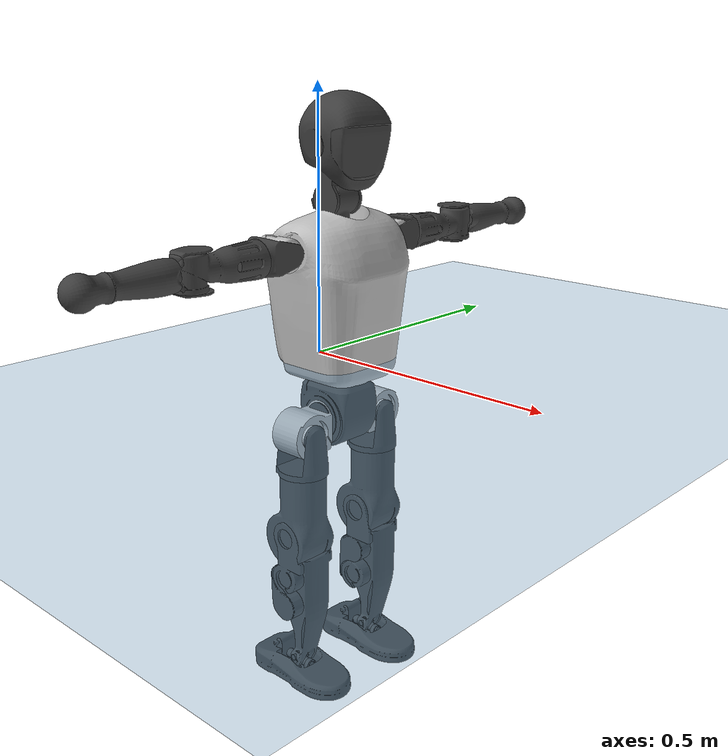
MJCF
<mujoco model="T1">
  <compiler angle="radian" assetdir="assets" balanceinertia="true" inertiafromgeom="false"/>

  <option timestep="0.005" density="1.2" viscosity="2e-05"/>

  <size nkey="1"/>

  <visual>
    <quality shadowsize="8192"/>
    <map shadowclip="0.5"/>
  </visual>

  <default>
    <default class="/">
      <joint armature="0.01" damping="0.01" frictionloss="0.1"/>
      <geom contype="0" conaffinity="0" group="1" solref="-1000 -80"/>
      <site size="0.01 0.005 0.005" group="5"/>
      <general forcelimited="true" biastype="affine" gainprm="25" biasprm="0 -25 -0.6"/>
      <default class="t1">
        <geom rgba="0.25 0.25 0.25 1"/>
        <default class="visual">
          <geom type="mesh" group="2"/>
        </default>
        <default class="collision">
          <geom group="3"/>
        </default>
        <default class="foot">
          <geom size="0.1115 0.05 0.015" type="box" condim="6" group="4" priority="1" solimp="0.015 1 0.015"/>
        </default>
        <default class="reward_collision_sphere">
          <geom group="5" rgba="1 0 0 1"/>
        </default>
      </default>
    </default>
  </default>

  <asset>
    <texture type="skybox" colorspace="auto" name="//unnamed_texture_0" builtin="gradient" rgb1="0.95 0.95 0.95" rgb2="0.95 0.95 0.95" width="100" height="600"/>
    <texture type="2d" colorspace="auto" name="texplane" builtin="checker" rgb1="0.345 0.575 0.748" rgb2="0.345 0.575 0.748" markrgb="1 1 1" width="512" height="512"/>
    <material name="MatPlane" class="/" texture="texplane" texuniform="true" texrepeat="2 2" specular="0.9"/>
    <mesh name="Trunk" class="/" file="Trunk.stl"/>
    <mesh name="H1" class="/" file="H1.stl"/>
    <mesh name="H2" class="/" file="H2.stl"/>
    <mesh name="AL1" class="/" file="AL1.stl"/>
    <mesh name="AL2" class="/" file="AL2.stl"/>
    <mesh name="AL3" class="/" file="AL3.stl"/>
    <mesh name="left_hand_link" class="/" file="left_hand_link.stl"/>
    <mesh name="AR1" class="/" file="AR1.stl"/>
    <mesh name="AR2" class="/" file="AR2.stl"/>
    <mesh name="AR3" class="/" file="AR3.stl"/>
    <mesh name="right_hand_link" class="/" file="right_hand_link.stl"/>
    <mesh name="Waist" class="/" file="Waist.stl"/>
    <mesh name="Hip_Pitch_Left" class="/" file="Hip_Pitch_Left.stl"/>
    <mesh name="Hip_Roll_Left" class="/" file="Hip_Roll_Left.stl"/>
    <mesh name="Hip_Yaw_Left" class="/" file="Hip_Yaw_Left.stl"/>
    <mesh name="Shank_Left" class="/" file="Shank_Left.stl"/>
    <mesh name="Ankle_Cross_Left" class="/" file="Ankle_Cross_Left.stl"/>
    <mesh name="left_foot_link" class="/" file="left_foot_link.stl"/>
    <mesh name="Hip_Pitch_Right" class="/" file="Hip_Pitch_Right.stl"/>
    <mesh name="Hip_Roll_Right" class="/" file="Hip_Roll_Right.stl"/>
    <mesh name="Hip_Yaw_Right" class="/" file="Hip_Yaw_Right.stl"/>
    <mesh name="Shank_Right" class="/" file="Shank_Right.stl"/>
    <mesh name="Ankle_Cross_Right" class="/" file="Ankle_Cross_Right.stl"/>
    <mesh name="right_foot_link" class="/" file="right_foot_link.stl"/>
  </asset>

  <worldbody>
    <geom name="floor" class="/" size="100 100 0.125" type="plane" group="0" material="MatPlane"/>
    <light name="toplight_shadow" class="/" pos="0 0 5" dir="0.0990148 0.0990148 -0.990148" type="directional" ambient="0.04 0.04 0.04" diffuse="0.55 0.55 0.55" specular="0.12 0.12 0.12"/>
    <light name="toplight_fill" class="/" pos="0 0 5" dir="0.0990148 0.0990148 -0.990148" type="directional" castshadow="false" ambient="0.04 0.04 0.04" diffuse="0.3 0.3 0.3" specular="0.08 0.08 0.08"/>
    <body name="trunk" childclass="t1" pos="2.22364e-05 0.00100594 0.00229954" quat="1 3.80013e-05 0.000110668 -4.72021e-05">
      <inertial pos="0.0395823 -0.0029382 0.10204" quat="0.99995 -3.82523e-05 -0.00994668 -0.000352194" mass="7.84205" diaginertia="0.024346 0.0485056 0.0464435"/>
      <joint name="//unnamed_joint_0" type="free" armature="0" damping="0" frictionloss="0"/>
      <geom name="//unnamed_geom_1" class="visual" rgba="0.76 0.76 0.76 1" mesh="Trunk"/>
      <geom name="//unnamed_geom_2" class="collision" size="0.0660738 0.0880984 0.132148" pos="0.0458195 0 0.11613" type="box"/>
      <geom name="//unnamed_geom_3" class="reward_collision_sphere" size="0.101313" pos="0.0458195 0 0.0967748"/>
      <geom name="//unnamed_geom_4" class="reward_collision_sphere" size="0.0132148" pos="0.0458195 0.0774814 0"/>
      <geom name="//unnamed_geom_5" class="reward_collision_sphere" size="0.0132148" pos="0.0458195 -0.0774814 0"/>
      <geom name="//unnamed_geom_6" class="reward_collision_sphere" size="0.0132148" pos="0.0458195 0.0975354 0.174195"/>
      <geom name="//unnamed_geom_7" class="reward_collision_sphere" size="0.0132148" pos="0.0458195 -0.0975354 0.174195"/>
      <site name="imu" pos="-0.0132979 0.0129304 -0.0134812" size="0.00880984"/>
      <camera name="track" pos="0 -1.82309 0" quat="0.707107 0.707107 0 0" mode="trackcom"/>
      <camera name="ego_camera" pos="0.0931664 0 0.406454" quat="-0.5 -0.5 0.5 0.5"/>
      <body name="H1" pos="0.0468768 0.000663673 0.234887" quat="0.999999 0.00123355 5.74563e-05 0.000675984">
        <inertial pos="-0.00114314 -0.00191992 0.0555339" quat="0.766574 -0.0101724 0.000451722 0.642075" mass="0.323672" diaginertia="6.27643e-05 0.000144979 0.000132075"/>
        <joint name="AAHead_yaw" pos="0 0 0" axis="-0.00128085 -0.00885181 0.99996" range="-1.59303 1.5592" armature="0.0101146" damping="0" frictionloss="0.0898864"/>
        <geom name="//unnamed_geom_8" class="visual" mesh="H1"/>
        <body name="H2" pos="0.00186996 -0.0022515 0.0596834" quat="1 -0.000100035 0.000129009 -0.000636029">
          <inertial pos="0.00467657 -9.31012e-06 0.0955275" quat="0.988462 0.104689 -0.0790476 -0.0757328" mass="0.435099" diaginertia="0.000531551 0.00120806 0.001493"/>
          <joint name="Head_pitch" pos="0 0 0" axis="-0.00332519 -0.99992 0.0122394" stiffness="0.00645167" range="-1.2001 0.312508" armature="0.00902836" damping="0" frictionloss="0.0922054"/>
          <geom name="//unnamed_geom_9" class="visual" mesh="H2"/>
          <geom name="//unnamed_geom_10" class="collision" size="0.0704787" pos="0.00763659 0 0.106452"/>
          <geom name="//unnamed_geom_11" class="reward_collision_sphere" size="0.0792886" pos="0.0152732 0 0.0967748"/>
        </body>
      </body>
      <body name="AL1" pos="0.0437291 0.0986401 0.211978" quat="0.999999 -0.000681187 0.000241934 -0.00119854">
        <inertial pos="-0.000390294 0.043585 0.000233656" quat="0.505354 0.492784 -0.502214 0.499562" mass="0.360899" diaginertia="0.000363457 0.000810396 0.00024693"/>
        <joint name="Left_Shoulder_Pitch" pos="0 0 0" axis="0.00354664 0.999991 -0.00233211" range="-3.29201 1.23339" armature="0.00894574" damping="0.00891635" frictionloss="0.0787735"/>
        <geom name="//unnamed_geom_12" class="visual" rgba="0.76 0.76 0.76 1" mesh="AL1"/>
        <body name="AL2" pos="-0.00105061 0.0447063 0.000145826" quat="1 3.03125e-05 8.66997e-06 1.08944e-05">
          <inertial pos="0.00194962 0.0353236 0.00251627" quat="0.488138 0.512098 -0.487787 0.511411" mass="0.116501" diaginertia="0.000107243 0.000215948 0.000157105"/>
          <joint name="Left_Shoulder_Roll" pos="0 0 0" axis="-0.999989 0.000560183 0.00468788" stiffness="0.00583985" range="-1.51728 1.79453" armature="0.00775506" damping="0" frictionloss="0.0888888"/>
          <geom name="//unnamed_geom_13" class="visual" mesh="AL2"/>
          <body name="AL3" pos="0.00330515 0.0564566 -0.00171023" quat="1 -0.000528974 -0.000332663 -0.000301171">
            <inertial pos="0.00197972 0.0775933 -0.000274494" quat="0.704375 0.709805 -0.00568056 7.21359e-05" mass="0.706936" diaginertia="0.00324245 0.00828215 0.000511112"/>
            <joint name="Left_Elbow_Pitch" pos="0 0 0" axis="0.0003771 -0.999928 0.0119907" range="-2.21989 2.3241" armature="0.00778932" damping="0.00841769" frictionloss="0.0771997"/>
            <geom name="//unnamed_geom_14" class="visual" mesh="AL3"/>
            <geom name="//unnamed_geom_15" class="collision" size="0.0264295 0.0660738" pos="0 0.0455773 0" quat="0.707105 0.707108 0 0" type="cylinder"/>
            <geom name="//unnamed_geom_16" class="reward_collision_sphere" size="0.0317154"/>
            <body name="left_hand_link" pos="-0.00195067 0.137019 0.00284608" quat="1 0.000308816 -0.000195623 0.00031054">
              <inertial pos="3.56351e-05 0.0988894 0.00183073" quat="0.707958 0.706255 -5.97719e-05 -0.0002172" mass="0.223508" diaginertia="0.00219623 0.00527011 0.000182984"/>
              <joint name="Left_Elbow_Yaw" pos="0 0 0" axis="0.00244957 -0.0055952 0.999981" range="-2.46435 -0.0014862" armature="0.0101147" damping="0.0109124" frictionloss="0.0799923"/>
              <geom name="//unnamed_geom_17" class="visual" mesh="left_hand_link"/>
              <geom name="//unnamed_geom_18" class="collision" size="0.0264295 0.0770861" pos="0 0.118501 0" quat="0.707105 0.707108 0 0" type="cylinder"/>
              <geom name="//unnamed_geom_19" class="reward_collision_sphere" size="0.0440492"/>
              <geom name="//unnamed_geom_20" class="reward_collision_sphere" size="0.0308344" pos="0 0.10027 0"/>
              <geom name="//unnamed_geom_21" class="reward_collision_sphere" size="0.0308344" pos="0 0.195982 0"/>
            </body>
          </body>
        </body>
      </body>
      <body name="AR1" pos="0.0408482 -0.0935675 0.212325" quat="1 0.000265486 0.000280133 -0.000508372">
        <inertial pos="-0.00349948 -0.0411437 0.00234234" quat="0.505712 0.504919 -0.49858 0.490643" mass="0.370217" diaginertia="0.000350528 0.000802912 0.000257608"/>
        <joint name="Right_Shoulder_Pitch" pos="0 0 0" axis="0.000302866 -1 -0.00026056" stiffness="0.00533587" range="-1.23036 3.30195" armature="0.00896129" damping="0.0103783" frictionloss="0.0772894"/>
        <geom name="//unnamed_geom_22" class="visual" rgba="0.76 0.76 0.76 1" mesh="AR1"/>
        <body name="AR2" pos="0.000135858 -0.0414674 0.00043897" quat="1 0.000175077 0.000145318 0.000145268">
          <inertial pos="0.00279685 -0.0355993 0.00203758" quat="0.512471 0.487251 -0.511657 0.488024" mass="0.109742" diaginertia="0.000103486 0.000224582 0.000152941"/>
          <joint name="Right_Shoulder_Roll" pos="0 0 0" axis="-0.999892 -0.00199524 -0.0145369" range="-1.70709 1.62288" armature="0.00777233" damping="0.0170746" frictionloss="0.0833873"/>
          <geom name="//unnamed_geom_23" class="visual" mesh="AR2"/>
          <body name="AR3" pos="0.000571437 -0.0542048 -0.00233356" quat="1 0.000123565 -9.95126e-05 -0.000106798">
            <inertial pos="-0.000153413 -0.0805902 0.00278752" quat="0.716367 0.697716 -0.0026898 0.00211851" mass="0.69074" diaginertia="0.00339727 0.00780203 0.000544917"/>
            <joint name="Right_Elbow_Pitch" pos="0 0 0" axis="0.00131475 0.999982 -0.00585425" range="-2.23121 2.21878" armature="0.00891362" damping="0.0211549" frictionloss="0.088897"/>
            <geom name="//unnamed_geom_24" class="visual" mesh="AR3"/>
            <geom name="//unnamed_geom_25" class="collision" size="0.0264295 0.0660738" pos="0 -0.0455773 0" quat="0.707105 0.707108 0 0" type="cylinder"/>
            <geom name="//unnamed_geom_26" class="reward_collision_sphere" size="0.0317154"/>
            <body name="right_hand_link" pos="0.000568879 -0.134189 -0.000124848" quat="1 0.000252679 0.000503504 -9.7714e-06">
              <inertial pos="-7.5893e-05 -0.0986989 -0.00180347" quat="0.704843 0.709359 0.0020053 0.00175504" mass="0.221954" diaginertia="0.00208463 0.00508533 0.000175732"/>
              <joint name="Right_Elbow_Yaw" pos="0 0 0" axis="0.000732318 -0.00160068 0.999998" stiffness="0.00222841" range="-0.0213393 2.44903" armature="0.00829869" damping="0.00207026" frictionloss="0.0983025"/>
              <geom name="//unnamed_geom_27" class="visual" mesh="right_hand_link"/>
              <geom name="//unnamed_geom_28" class="collision" size="0.0264295 0.0770861" pos="0 -0.118501 0" quat="0.707105 0.707108 0 0" type="cylinder"/>
              <geom name="//unnamed_geom_29" class="reward_collision_sphere" size="0.0440492"/>
              <geom name="//unnamed_geom_30" class="reward_collision_sphere" size="0.0308344" pos="0 -0.10027 0"/>
              <geom name="//unnamed_geom_31" class="reward_collision_sphere" size="0.0308344" pos="0 -0.195982 0"/>
            </body>
          </body>
        </body>
      </body>
      <body name="Waist" pos="0.0496523 -0.000877794 -0.110966" quat="1 -0.00019894 5.15097e-05 -9.89485e-07">
        <inertial pos="-0.000814405 0.00162304 0.00694127" quat="0.984201 0.00216308 -0.177012 0.00332059" mass="1.77333" diaginertia="0.00135066 0.00336351 0.00409005"/>
        <joint name="Waist" pos="0 0 0" axis="0.011024 -0.00175206 0.999938" stiffness="0.00633693" range="-1.57286 1.5719" armature="0.00827192" damping="0.024953" frictionloss="0.0858961"/>
        <geom name="//unnamed_geom_32" class="visual" mesh="Waist"/>
        <body name="Hip_Pitch_Left" pos="-0.00165622 0.0984957 0.00206248" quat="0.999999 0.000497361 -0.000978671 -0.000713935">
          <inertial pos="-0.00201828 -0.00429606 -0.0177961" quat="0.975072 0.221441 0.0141016 0.000446485" mass="0.685498" diaginertia="0.000454368 0.000897011 0.00106351"/>
          <joint name="Left_Hip_Pitch" pos="0 0 0" axis="0.00234415 0.999996 -0.00149752" range="-1.78794 1.57834" armature="0.00752997" damping="0.0134001" frictionloss="0.0993683"/>
          <geom name="//unnamed_geom_33" class="visual" rgba="0.76 0.76 0.76 1" mesh="Hip_Pitch_Left"/>
          <body name="Hip_Roll_Left" pos="0.00327661 -0.00167448 -0.0219982" quat="1 -0.000488779 0.000438275 0.000291224">
            <inertial pos="0.00307595 -0.00118327 -0.0545932" quat="0.70464 -0.00573914 -0.00478754 0.709525" mass="0.254428" diaginertia="0.000455654 0.00094365 0.000431038"/>
            <joint name="Left_Hip_Roll" pos="0 0 0" axis="-0.999999 0.000411155 -0.0014208" range="-1.56957 0.210987" armature="0.00976853" damping="0.0219506" frictionloss="0.0886274"/>
            <geom name="//unnamed_geom_34" class="visual" mesh="Hip_Roll_Left"/>
            <geom name="//unnamed_geom_35" class="reward_collision_sphere" size="0.0484541"/>
            <body name="Hip_Yaw_Left" pos="0.000139019 0.00107376 -0.0780951" quat="1 -0.000139483 -8.92105e-05 -0.000183516">
              <inertial pos="-0.00509343 0.00175948 -0.0836962" quat="0.696043 -0.0360023 -0.0315988 0.7164" mass="1.51523" diaginertia="0.00684451 0.0163077 0.00222788"/>
              <joint name="Left_Hip_Yaw" pos="0 0 0" axis="-0.00171056 -0.0030389 -0.999994" stiffness="0.00175737" range="-1.00138 0.998171" armature="0.0087804" damping="0.00318883" frictionloss="0.0980469"/>
              <geom name="//unnamed_geom_36" class="visual" mesh="Hip_Yaw_Left"/>
              <geom name="//unnamed_geom_37" class="collision" size="0.0440492 0.0704787" type="cylinder"/>
              <body name="Shank_Left" pos="-0.00884765 -0.00191828 -0.132214" quat="0.999999 0.00100012 -0.000799323 -0.000542631">
                <inertial pos="-0.00421807 -0.00147471 -0.119789" quat="0.997767 0.012857 -0.016409 0.063452" mass="1.21162" diaginertia="0.00914924 0.0224277 0.00159769"/>
                <joint name="Left_Knee_Pitch" pos="0 0 0" axis="0.00996621 0.999935 0.00562404" range="-0.0131786 2.28487" armature="0.0100397" damping="0" frictionloss="0.0875791"/>
                <geom name="//unnamed_geom_38" class="visual" mesh="Shank_Left"/>
                <geom name="//unnamed_geom_39" class="collision" size="0.0440492 0.0660738" pos="0 0 -0.11613" type="cylinder"/>
                <geom name="//unnamed_geom_40" class="reward_collision_sphere" size="0.057264"/>
                <body name="Ankle_Cross_Left" pos="0.00159655 -0.00297015 -0.27023" quat="1 0.000407235 -0.000270267 0.000360158">
                  <inertial pos="-0.00185249 3.94461e-05 -0.00792616" quat="0.451317 0.555815 0.544537 0.436878" mass="0.0482381" diaginertia="7.71523e-06 1.60074e-05 9.51553e-06"/>
                  <joint name="Left_Ankle_Pitch" pos="0 0 0" axis="0.000542554 0.999999 0.00123873" stiffness="0.00860426" range="-0.92047 0.402379" armature="0.00973162" damping="0.000655722" frictionloss="0.0967555"/>
                  <geom name="//unnamed_geom_41" class="visual" mesh="Ankle_Cross_Left"/>
                  <body name="left_foot_link" pos="-0.00243073 -0.00132115 -0.0145322" quat="0.999999 -0.000107891 0.000939548 0.000922202">
                    <inertial pos="0.000401805 -0.000734821 -0.00935575" quat="-0.0132303 0.621703 0.00200013 0.783139" mass="0.481268" diaginertia="0.000710071 0.00154676 0.00195981"/>
                    <joint name="Left_Ankle_Roll" pos="0 0 0" axis="-0.999937 0.0109917 0.00236969" stiffness="0.00855757" range="-0.431821 0.49069" armature="0.00891786" damping="0.0100518" frictionloss="0.0972571"/>
                    <geom name="//unnamed_geom_42" class="visual" mesh="left_foot_link"/>
                    <geom name="left_foot" class="foot" size="0.102759 0.0406121 0.0142163" pos="0.00763659 0 -0.0145162"/>
                    <geom name="//unnamed_geom_44" class="reward_collision_sphere" size="0.0458112" pos="0.00763659 0 -0.0145162"/>
                    <geom name="//unnamed_geom_45" class="reward_collision_sphere" size="0.0264295" pos="0.0725476 -0.0209656 -0.0145162"/>
                    <geom name="//unnamed_geom_46" class="reward_collision_sphere" size="0.0264295" pos="-0.0534561 -0.0209656 -0.0145162"/>
                    <site name="left_foot" class="foot" pos="0.00763659 0 -0.0145162" size="0.00880984"/>
                  </body>
                </body>
              </body>
            </body>
          </body>
        </body>
        <body name="Hip_Pitch_Right" pos="-0.000948081 -0.0965138 -0.000152229" quat="1 -0.000487416 -0.000216428 -6.32867e-05">
          <inertial pos="-5.59648e-05 0.00721729 -0.018435" quat="0.974001 -0.225638 0.0188586 0.00732399" mass="0.672337" diaginertia="0.000455047 0.000909773 0.00102725"/>
          <joint name="Right_Hip_Pitch" pos="0 0 0" axis="-0.00118493 -0.999997 0.00231918" range="-1.57293 1.76233" armature="0.00902427" damping="0.00916918" frictionloss="0.0897273"/>
          <geom name="//unnamed_geom_47" class="visual" rgba="0.76 0.76 0.76 1" mesh="Hip_Pitch_Right"/>
          <body name="Hip_Roll_Right" pos="0.00205223 0.000396628 -0.0217502" quat="1 2.09324e-05 2.05819e-05 2.62625e-05">
            <inertial pos="0.00168381 0.00164279 -0.0519178" quat="0.711597 0.00519974 -0.00751795 0.702529" mass="0.251784" diaginertia="0.00044934 0.000944852 0.000417424"/>
            <joint name="Right_Hip_Roll" pos="0 0 0" axis="-0.999987 0.00462925 -0.00222998" stiffness="0.0059702" range="-0.178119 1.57468" armature="0.00794028" damping="0.0081708" frictionloss="0.0888898"/>
            <geom name="//unnamed_geom_48" class="visual" mesh="Hip_Roll_Right"/>
            <geom name="//unnamed_geom_49" class="reward_collision_sphere" size="0.0484541"/>
            <body name="Hip_Yaw_Right" pos="-0.00266459 0.00166795 -0.0790504" quat="1 0.000283862 0.000362827 0.000240099">
              <inertial pos="-0.00798984 -0.000592665 -0.0888281" quat="0.707623 -0.0272488 -0.0255328 0.705603" mass="1.5159" diaginertia="0.00663409 0.0155648 0.0021493"/>
              <joint name="Right_Hip_Yaw" pos="0 0 0" axis="-0.00153177 -0.000139445 -0.999999" range="-0.949064 0.964033" armature="0.00854074" damping="0.00482741" frictionloss="0.0878354"/>
              <geom name="//unnamed_geom_50" class="visual" mesh="Hip_Yaw_Right"/>
              <geom name="//unnamed_geom_51" class="collision" size="0.0440492 0.0704787" type="cylinder"/>
              <body name="Shank_Right" pos="-0.00995755 0.00185444 -0.127021" quat="1 0.00010659 0.000168402 -0.000205478">
                <inertial pos="-0.00229 -0.00100765 -0.119701" quat="0.999618 0.00274757 -0.0111393 -0.0251505" mass="1.14539" diaginertia="0.00881976 0.0219792 0.00161429"/>
                <joint name="Right_Knee_Pitch" pos="0 0 0" axis="-0.00115652 -0.99999 0.00425478" range="-2.34926 -0.0212992" armature="0.00969103" damping="0" frictionloss="0.0999312"/>
                <geom name="//unnamed_geom_52" class="visual" mesh="Shank_Right"/>
                <geom name="//unnamed_geom_53" class="collision" size="0.0440492 0.0660738" pos="0 0 -0.11613" type="cylinder"/>
                <geom name="//unnamed_geom_54" class="reward_collision_sphere" size="0.057264"/>
                <body name="Ankle_Cross_Right" pos="-0.00106272 -0.00316948 -0.270256" quat="0.999999 -0.000729597 4.80037e-05 -0.00114443">
                  <inertial pos="-0.00185245 -0.000381815 -0.00669775" quat="0.443258 0.549036 0.552398 0.443777" mass="0.0498218" diaginertia="7.22527e-06 1.6085e-05 9.54437e-06"/>
                  <joint name="Right_Ankle_Pitch" pos="0 0 0" axis="0.000384965 -0.999999 0.00149124" range="-0.377078 0.919999" armature="0.00894933" damping="0.0207865" frictionloss="0.0882121"/>
                  <geom name="//unnamed_geom_55" class="visual" mesh="Ankle_Cross_Right"/>
                  <body name="right_foot_link" pos="8.27907e-05 -0.00107278 -0.0133003" quat="0.999999 0.00130919 -0.00029465 -0.00022311">
                    <inertial pos="-0.00273752 0.000784854 -0.00880047" quat="0.000336326 0.621429 0.000327962 0.78347" mass="0.468156" diaginertia="0.000677786 0.0014574 0.00185296"/>
                    <joint name="Right_Ankle_Roll" pos="0 0 0" axis="-1 9.14957e-05 0.000426867" stiffness="0.00382464" range="-0.40227 0.411974" armature="0.00876249" damping="0.00256971" frictionloss="0.0844063"/>
                    <geom name="//unnamed_geom_56" class="visual" mesh="right_foot_link"/>
                    <geom name="right_foot" class="foot" size="0.100957 0.0425622 0.0137392" pos="0.00763659 0 -0.0145162"/>
                    <geom name="//unnamed_geom_58" class="reward_collision_sphere" size="0.0352394"/>
                    <geom name="//unnamed_geom_59" class="reward_collision_sphere" size="0.0264295" pos="0.00763659 0 -0.0145162"/>
                    <geom name="//unnamed_geom_60" class="reward_collision_sphere" size="0.0264295" pos="0.0725476 0.0209656 -0.0145162"/>
                    <geom name="//unnamed_geom_61" class="reward_collision_sphere" size="0.0264295" pos="-0.0534561 0.0209656 -0.0145162"/>
                    <site name="right_foot" class="foot" pos="0.00763659 0 -0.0145162" size="0.00880984"/>
                  </body>
                </body>
              </body>
            </body>
          </body>
        </body>
      </body>
    </body>
  </worldbody>

  <contact>
    <pair class="/" geom1="floor" geom2="left_foot" name="//unnamed_contact_0"/>
    <pair class="/" geom1="floor" geom2="right_foot" name="//unnamed_contact_1"/>
  </contact>

  <actuator>
    <general name="AAHead_yaw" class="/" joint="AAHead_yaw" forcerange="-6.22298 6.22298" gainprm="20.5372" biasprm="0 -20.5372 -0.497536"/>
    <general name="Head_pitch" class="/" joint="Head_pitch" forcerange="-5.99361 5.99361" gainprm="20.5372" biasprm="0 -20.5372 -0.497536"/>
    <general name="Left_Shoulder_Pitch" class="/" joint="Left_Shoulder_Pitch" forcerange="-15.298 15.298" gainprm="20.5372" biasprm="0 -20.5372 -0.497536"/>
    <general name="Left_Shoulder_Roll" class="/" joint="Left_Shoulder_Roll" forcerange="-14.8138 14.8138" gainprm="20.5372" biasprm="0 -20.5372 -0.497536"/>
    <general name="Left_Elbow_Pitch" class="/" joint="Left_Elbow_Pitch" forcerange="-14.3771 14.3771" gainprm="20.5372" biasprm="0 -20.5372 -0.497536"/>
    <general name="Left_Elbow_Yaw" class="/" joint="Left_Elbow_Yaw" forcerange="-17.5696 17.5696" gainprm="20.5372" biasprm="0 -20.5372 -0.497536"/>
    <general name="Right_Shoulder_Pitch" class="/" joint="Right_Shoulder_Pitch" forcerange="-17.5452 17.5452" gainprm="20.5372" biasprm="0 -20.5372 -0.497536"/>
    <general name="Right_Shoulder_Roll" class="/" joint="Right_Shoulder_Roll" forcerange="-15.4847 15.4847" gainprm="20.5372" biasprm="0 -20.5372 -0.497536"/>
    <general name="Right_Elbow_Pitch" class="/" joint="Right_Elbow_Pitch" forcerange="-15.8651 15.8651" gainprm="20.5372" biasprm="0 -20.5372 -0.497536"/>
    <general name="Right_Elbow_Yaw" class="/" joint="Right_Elbow_Yaw" forcerange="-15.7015 15.7015" gainprm="20.5372" biasprm="0 -20.5372 -0.497536"/>
    <general name="Waist" class="/" joint="Waist" forcerange="-26.4309 26.4309" gainprm="20.5372" biasprm="0 -20.5372 -0.497536"/>
    <general name="Left_Hip_Pitch" class="/" joint="Left_Hip_Pitch" forcerange="-38.7425 38.7425" gainprm="20.5372" biasprm="0 -20.5372 -0.497536"/>
    <general name="Left_Hip_Roll" class="/" joint="Left_Hip_Roll" forcerange="-29.1333 29.1333" gainprm="20.5372" biasprm="0 -20.5372 -0.497536"/>
    <general name="Left_Hip_Yaw" class="/" joint="Left_Hip_Yaw" forcerange="-23.9409 23.9409" gainprm="20.5372" biasprm="0 -20.5372 -0.497536"/>
    <general name="Left_Knee_Pitch" class="/" joint="Left_Knee_Pitch" forcerange="-47.6618 47.6618" gainprm="20.5372" biasprm="0 -20.5372 -0.497536"/>
    <general name="Left_Ankle_Pitch" class="/" joint="Left_Ankle_Pitch" forcerange="-17.9164 17.9164" gainprm="20.5372" biasprm="0 -20.5372 -0.497536"/>
    <general name="Left_Ankle_Roll" class="/" joint="Left_Ankle_Roll" forcerange="-13.225 13.225" gainprm="20.5372" biasprm="0 -20.5372 -0.497536"/>
    <general name="Right_Hip_Pitch" class="/" joint="Right_Hip_Pitch" forcerange="-39.4131 39.4131" gainprm="20.5372" biasprm="0 -20.5372 -0.497536"/>
    <general name="Right_Hip_Roll" class="/" joint="Right_Hip_Roll" forcerange="-26.0732 26.0732" gainprm="20.5372" biasprm="0 -20.5372 -0.497536"/>
    <general name="Right_Hip_Yaw" class="/" joint="Right_Hip_Yaw" forcerange="-27.9845 27.9845" gainprm="20.5372" biasprm="0 -20.5372 -0.497536"/>
    <general name="Right_Knee_Pitch" class="/" joint="Right_Knee_Pitch" forcerange="-53.4136 53.4136" gainprm="20.5372" biasprm="0 -20.5372 -0.497536"/>
    <general name="Right_Ankle_Pitch" class="/" joint="Right_Ankle_Pitch" forcerange="-15.7918 15.7918" gainprm="20.5372" biasprm="0 -20.5372 -0.497536"/>
    <general name="Right_Ankle_Roll" class="/" joint="Right_Ankle_Roll" forcerange="-13.2063 13.2063" gainprm="20.5372" biasprm="0 -20.5372 -0.497536"/>
  </actuator>

  <sensor>
    <gyro site="imu" name="imu_angular_velocity"/>
    <velocimeter site="imu" name="imu_linear_velocity"/>
    <framelinvel objtype="site" objname="left_foot" name="left_foot_global_linear_velocity"/>
    <framelinvel objtype="site" objname="right_foot" name="right_foot_global_linear_velocity"/>
  </sensor>

  <keyframe>
    <key name="home" qpos="0 0 0.6385 1 0 0 0 0 0 0 1.4 0 -0.4 0 -1.4 0 0.4 0 -0.4 0 0 0.8 -0.4 0 0.4 0 0 -0.8 0.4 0"/>
  </keyframe>
</mujoco>
